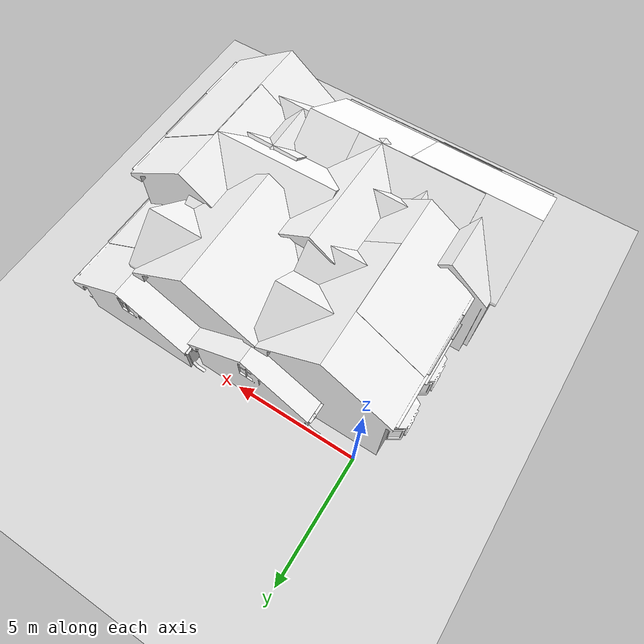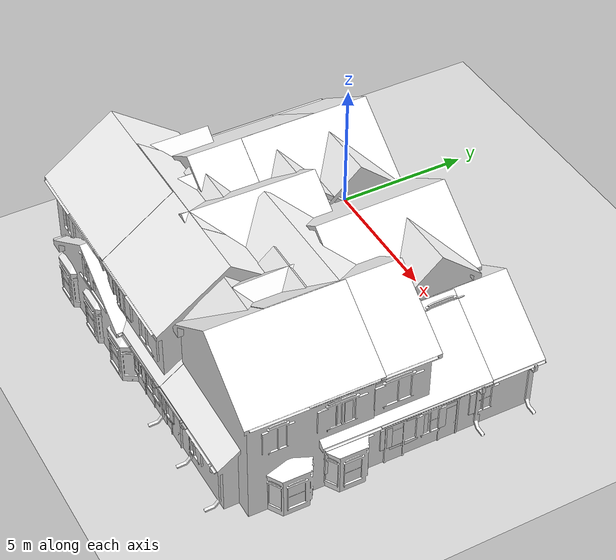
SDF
<sdf version="1.6">
 <world name="default">
  <model name="ground_plane">
   <static>1</static>
   <link name="link">
    <collision name="collision">
     <geometry><plane><normal>0 0 1</normal><size>100 100</size></plane></geometry>
     <surface><friction><ode><mu>100</mu><mu2>50</mu2></ode></friction></surface>
    </collision>
    <visual name="visual">
     <cast_shadows>0</cast_shadows>
     <geometry><plane><normal>0 0 1</normal><size>100 100</size></plane></geometry>
     <material>
      <script><uri>file://media/materials/scripts/gazebo.material</uri><name>Gazebo/Grey</name></script>
     </material>
    </visual>
   </link>
  </model>
  <model name="Ev1_clone_0_clone_clone_0_clone">
   <link name="link">
    <inertial>
     <mass>1</mass>
     <inertia><ixx>1</ixx><ixy>0</ixy><ixz>0</ixz><iyy>1</iyy><iyz>0</iyz><izz>1</izz></inertia>
    </inertial>
    <visual name="visual">
     <geometry><mesh><uri>model://house_3/meshes/house_3.dae</uri><scale>1 1 1</scale></mesh></geometry>
     <material>
      <script>
       <uri>model://house_3/materials/scripts</uri>
       <uri>model://house_3/materials/textures</uri>
       <name>House_3/Diffuse</name>
      </script>
      <ambient>1 1 1 1</ambient>
      <diffuse>1 1 1 1</diffuse>
      <specular>0 0 0 1</specular>
      <emissive>0 0 0 1</emissive>
      <shader type="vertex"><normal_map>__default__</normal_map></shader>
     </material>
    </visual>
    <collision name="collision">
     <geometry>
      <mesh><uri>/home/dgknrsln/.gazebo/models/house_3/meshes/house_3.dae</uri><scale>1 1 1</scale></mesh>
     </geometry>
     <surface>
      <friction>
       <ode><mu>1</mu><mu2>1</mu2><fdir1>0 0 0</fdir1><slip1>0</slip1><slip2>0</slip2></ode>
       <torsional>
        <coefficient>1</coefficient>
        <patch_radius>0</patch_radius>
        <surface_radius>0</surface_radius>
        <use_patch_radius>1</use_patch_radius>
        <ode><slip>0</slip></ode>
       </torsional>
      </friction>
      <bounce><restitution_coefficient>0</restitution_coefficient><threshold>1e+06</threshold></bounce>
      <contact>
       <collide_without_contact>0</collide_without_contact>
       <collide_without_contact_bitmask>1</collide_without_contact_bitmask>
       <collide_bitmask>1</collide_bitmask>
       <ode>
        <soft_cfm>0</soft_cfm>
        <soft_erp>0.2</soft_erp>
        <kp>1e+13</kp>
        <kd>1</kd>
        <max_vel>0.01</max_vel>
        <min_depth>0</min_depth>
       </ode>
       <bullet>
        <split_impulse>1</split_impulse>
        <split_impulse_penetration_threshold>-0.01</split_impulse_penetration_threshold>
        <soft_cfm>0</soft_cfm>
        <soft_erp>0.2</soft_erp>
        <kp>1e+13</kp>
        <kd>1</kd>
       </bullet>
      </contact>
     </surface>
    </collision>
   </link>
   <static>1</static>
   <pose>6.74391 -5.0643 0 0 0 -1.56767</pose>
  </model>
  <model name="Ev1_clone_0_clone_0">
   <link name="link">
    <inertial>
     <mass>1</mass>
     <inertia><ixx>1</ixx><ixy>0</ixy><ixz>0</ixz><iyy>1</iyy><iyz>0</iyz><izz>1</izz></inertia>
    </inertial>
    <visual name="visual">
     <geometry><mesh><uri>model://house_3/meshes/house_3.dae</uri><scale>1 1 1</scale></mesh></geometry>
     <material>
      <script>
       <uri>model://house_3/materials/scripts</uri>
       <uri>model://house_3/materials/textures</uri>
       <name>House_3/Diffuse</name>
      </script>
      <ambient>1 1 1 1</ambient>
      <diffuse>1 1 1 1</diffuse>
      <specular>0 0 0 1</specular>
      <emissive>0 0 0 1</emissive>
      <shader type="vertex"><normal_map>__default__</normal_map></shader>
     </material>
    </visual>
    <collision name="collision">
     <geometry>
      <mesh><uri>/home/dgknrsln/.gazebo/models/house_3/meshes/house_3.dae</uri><scale>1 1 1</scale></mesh>
     </geometry>
     <surface>
      <friction>
       <ode><mu>1</mu><mu2>1</mu2><fdir1>0 0 0</fdir1><slip1>0</slip1><slip2>0</slip2></ode>
       <torsional>
        <coefficient>1</coefficient>
        <patch_radius>0</patch_radius>
        <surface_radius>0</surface_radius>
        <use_patch_radius>1</use_patch_radius>
        <ode><slip>0</slip></ode>
       </torsional>
      </friction>
      <bounce><restitution_coefficient>0</restitution_coefficient><threshold>1e+06</threshold></bounce>
      <contact>
       <collide_without_contact>0</collide_without_contact>
       <collide_without_contact_bitmask>1</collide_without_contact_bitmask>
       <collide_bitmask>1</collide_bitmask>
       <ode>
        <soft_cfm>0</soft_cfm>
        <soft_erp>0.2</soft_erp>
        <kp>1e+13</kp>
        <kd>1</kd>
        <max_vel>0.01</max_vel>
        <min_depth>0</min_depth>
       </ode>
       <bullet>
        <split_impulse>1</split_impulse>
        <split_impulse_penetration_threshold>-0.01</split_impulse_penetration_threshold>
        <soft_cfm>0</soft_cfm>
        <soft_erp>0.2</soft_erp>
        <kp>1e+13</kp>
        <kd>1</kd>
       </bullet>
      </contact>
     </surface>
    </collision>
   </link>
   <static>1</static>
   <pose>4.29526 -3.82004 0 0 -0 1.55613</pose>
  </model>
  <model name="Ev1_clone_clone_clone_1">
   <link name="link">
    <inertial>
     <mass>1</mass>
     <inertia><ixx>1</ixx><ixy>0</ixy><ixz>0</ixz><iyy>1</iyy><iyz>0</iyz><izz>1</izz></inertia>
    </inertial>
    <visual name="visual">
     <geometry><mesh><uri>model://house_3/meshes/house_3.dae</uri><scale>1 1 1</scale></mesh></geometry>
     <material>
      <script>
       <uri>model://house_3/materials/scripts</uri>
       <uri>model://house_3/materials/textures</uri>
       <name>House_3/Diffuse</name>
      </script>
      <ambient>1 1 1 1</ambient>
      <diffuse>1 1 1 1</diffuse>
      <specular>0 0 0 1</specular>
      <emissive>0 0 0 1</emissive>
      <shader type="vertex"><normal_map>__default__</normal_map></shader>
     </material>
    </visual>
    <collision name="collision">
     <geometry>
      <mesh><uri>/home/dgknrsln/.gazebo/models/house_3/meshes/house_3.dae</uri><scale>1 1 1</scale></mesh>
     </geometry>
     <surface>
      <friction>
       <ode><mu>1</mu><mu2>1</mu2><fdir1>0 0 0</fdir1><slip1>0</slip1><slip2>0</slip2></ode>
       <torsional>
        <coefficient>1</coefficient>
        <patch_radius>0</patch_radius>
        <surface_radius>0</surface_radius>
        <use_patch_radius>1</use_patch_radius>
        <ode><slip>0</slip></ode>
       </torsional>
      </friction>
      <bounce><restitution_coefficient>0</restitution_coefficient><threshold>1e+06</threshold></bounce>
      <contact>
       <collide_without_contact>0</collide_without_contact>
       <collide_without_contact_bitmask>1</collide_without_contact_bitmask>
       <collide_bitmask>1</collide_bitmask>
       <ode>
        <soft_cfm>0</soft_cfm>
        <soft_erp>0.2</soft_erp>
        <kp>1e+13</kp>
        <kd>1</kd>
        <max_vel>0.01</max_vel>
        <min_depth>0</min_depth>
       </ode>
       <bullet>
        <split_impulse>1</split_impulse>
        <split_impulse_penetration_threshold>-0.01</split_impulse_penetration_threshold>
        <soft_cfm>0</soft_cfm>
        <soft_erp>0.2</soft_erp>
        <kp>1e+13</kp>
        <kd>1</kd>
       </bullet>
      </contact>
     </surface>
    </collision>
   </link>
   <static>1</static>
   <pose>4.55651 -5.72523 0 0 0 -3.13049</pose>
  </model>
  <model name="Ev1_clone_0_clone_clone_0_clone_clone_0">
   <link name="link">
    <inertial>
     <mass>1</mass>
     <inertia><ixx>1</ixx><ixy>0</ixy><ixz>0</ixz><iyy>1</iyy><iyz>0</iyz><izz>1</izz></inertia>
    </inertial>
    <visual name="visual">
     <geometry><mesh><uri>model://house_3/meshes/house_3.dae</uri><scale>1 1 1</scale></mesh></geometry>
     <material>
      <script>
       <uri>model://house_3/materials/scripts</uri>
       <uri>model://house_3/materials/textures</uri>
       <name>House_3/Diffuse</name>
      </script>
      <ambient>1 1 1 1</ambient>
      <diffuse>1 1 1 1</diffuse>
      <specular>0 0 0 1</specular>
      <emissive>0 0 0 1</emissive>
      <shader type="vertex"><normal_map>__default__</normal_map></shader>
     </material>
    </visual>
    <collision name="collision">
     <geometry>
      <mesh><uri>/home/dgknrsln/.gazebo/models/house_3/meshes/house_3.dae</uri><scale>1 1 1</scale></mesh>
     </geometry>
     <surface>
      <friction>
       <ode><mu>1</mu><mu2>1</mu2><fdir1>0 0 0</fdir1><slip1>0</slip1><slip2>0</slip2></ode>
       <torsional>
        <coefficient>1</coefficient>
        <patch_radius>0</patch_radius>
        <surface_radius>0</surface_radius>
        <use_patch_radius>1</use_patch_radius>
        <ode><slip>0</slip></ode>
       </torsional>
      </friction>
      <bounce><restitution_coefficient>0</restitution_coefficient><threshold>1e+06</threshold></bounce>
      <contact>
       <collide_without_contact>0</collide_without_contact>
       <collide_without_contact_bitmask>1</collide_without_contact_bitmask>
       <collide_bitmask>1</collide_bitmask>
       <ode>
        <soft_cfm>0</soft_cfm>
        <soft_erp>0.2</soft_erp>
        <kp>1e+13</kp>
        <kd>1</kd>
        <max_vel>0.01</max_vel>
        <min_depth>0</min_depth>
       </ode>
       <bullet>
        <split_impulse>1</split_impulse>
        <split_impulse_penetration_threshold>-0.01</split_impulse_penetration_threshold>
        <soft_cfm>0</soft_cfm>
        <soft_erp>0.2</soft_erp>
        <kp>1e+13</kp>
        <kd>1</kd>
       </bullet>
      </contact>
     </surface>
    </collision>
   </link>
   <static>1</static>
   <pose>1.74159 -5.0706 0 0 0 -1.56767</pose>
  </model>
  <model name="Ev1_clone_0_clone_clone_0_clone_clone_1">
   <link name="link">
    <inertial>
     <mass>1</mass>
     <inertia><ixx>1</ixx><ixy>0</ixy><ixz>0</ixz><iyy>1</iyy><iyz>0</iyz><izz>1</izz></inertia>
    </inertial>
    <visual name="visual">
     <geometry><mesh><uri>model://house_3/meshes/house_3.dae</uri><scale>1 1 1</scale></mesh></geometry>
     <material>
      <script>
       <uri>model://house_3/materials/scripts</uri>
       <uri>model://house_3/materials/textures</uri>
       <name>House_3/Diffuse</name>
      </script>
      <ambient>1 1 1 1</ambient>
      <diffuse>1 1 1 1</diffuse>
      <specular>0 0 0 1</specular>
      <emissive>0 0 0 1</emissive>
      <shader type="vertex"><normal_map>__default__</normal_map></shader>
     </material>
    </visual>
    <collision name="collision">
     <geometry>
      <mesh><uri>/home/dgknrsln/.gazebo/models/house_3/meshes/house_3.dae</uri><scale>1 1 1</scale></mesh>
     </geometry>
     <surface>
      <friction>
       <ode><mu>1</mu><mu2>1</mu2><fdir1>0 0 0</fdir1><slip1>0</slip1><slip2>0</slip2></ode>
       <torsional>
        <coefficient>1</coefficient>
        <patch_radius>0</patch_radius>
        <surface_radius>0</surface_radius>
        <use_patch_radius>1</use_patch_radius>
        <ode><slip>0</slip></ode>
       </torsional>
      </friction>
      <bounce><restitution_coefficient>0</restitution_coefficient><threshold>1e+06</threshold></bounce>
      <contact>
       <collide_without_contact>0</collide_without_contact>
       <collide_without_contact_bitmask>1</collide_without_contact_bitmask>
       <collide_bitmask>1</collide_bitmask>
       <ode>
        <soft_cfm>0</soft_cfm>
        <soft_erp>0.2</soft_erp>
        <kp>1e+13</kp>
        <kd>1</kd>
        <max_vel>0.01</max_vel>
        <min_depth>0</min_depth>
       </ode>
       <bullet>
        <split_impulse>1</split_impulse>
        <split_impulse_penetration_threshold>-0.01</split_impulse_penetration_threshold>
        <soft_cfm>0</soft_cfm>
        <soft_erp>0.2</soft_erp>
        <kp>1e+13</kp>
        <kd>1</kd>
       </bullet>
      </contact>
     </surface>
    </collision>
   </link>
   <static>1</static>
   <pose>1.73842 -7.06973 0 0 0 -1.56767</pose>
  </model>
  <model name="Ev1_clone_1_clone">
   <link name="link">
    <inertial>
     <mass>1</mass>
     <inertia><ixx>1</ixx><ixy>0</ixy><ixz>0</ixz><iyy>1</iyy><iyz>0</iyz><izz>1</izz></inertia>
    </inertial>
    <visual name="visual">
     <geometry><mesh><uri>model://house_3/meshes/house_3.dae</uri><scale>1 1 1</scale></mesh></geometry>
     <material>
      <script>
       <uri>model://house_3/materials/scripts</uri>
       <uri>model://house_3/materials/textures</uri>
       <name>House_3/Diffuse</name>
      </script>
      <ambient>1 1 1 1</ambient>
      <diffuse>1 1 1 1</diffuse>
      <specular>0 0 0 1</specular>
      <emissive>0 0 0 1</emissive>
      <shader type="vertex"><normal_map>__default__</normal_map></shader>
     </material>
    </visual>
    <collision name="collision">
     <geometry>
      <mesh><uri>/home/dgknrsln/.gazebo/models/house_3/meshes/house_3.dae</uri><scale>1 1 1</scale></mesh>
     </geometry>
     <surface>
      <friction>
       <ode><mu>1</mu><mu2>1</mu2><fdir1>0 0 0</fdir1><slip1>0</slip1><slip2>0</slip2></ode>
       <torsional>
        <coefficient>1</coefficient>
        <patch_radius>0</patch_radius>
        <surface_radius>0</surface_radius>
        <use_patch_radius>1</use_patch_radius>
        <ode><slip>0</slip></ode>
       </torsional>
      </friction>
      <bounce><restitution_coefficient>0</restitution_coefficient><threshold>1e+06</threshold></bounce>
      <contact>
       <collide_without_contact>0</collide_without_contact>
       <collide_without_contact_bitmask>1</collide_without_contact_bitmask>
       <collide_bitmask>1</collide_bitmask>
       <ode>
        <soft_cfm>0</soft_cfm>
        <soft_erp>0.2</soft_erp>
        <kp>1e+13</kp>
        <kd>1</kd>
        <max_vel>0.01</max_vel>
        <min_depth>0</min_depth>
       </ode>
       <bullet>
        <split_impulse>1</split_impulse>
        <split_impulse_penetration_threshold>-0.01</split_impulse_penetration_threshold>
        <soft_cfm>0</soft_cfm>
        <soft_erp>0.2</soft_erp>
        <kp>1e+13</kp>
        <kd>1</kd>
       </bullet>
      </contact>
     </surface>
    </collision>
   </link>
   <static>1</static>
   <pose>3.06075 -8.2986 0 0 -0 0</pose>
  </model>
  <model name="Ev1_clone_1_clone_0">
   <link name="link">
    <inertial>
     <mass>1</mass>
     <inertia><ixx>1</ixx><ixy>0</ixy><ixz>0</ixz><iyy>1</iyy><iyz>0</iyz><izz>1</izz></inertia>
    </inertial>
    <visual name="visual">
     <geometry><mesh><uri>model://house_3/meshes/house_3.dae</uri><scale>1 1 1</scale></mesh></geometry>
     <material>
      <script>
       <uri>model://house_3/materials/scripts</uri>
       <uri>model://house_3/materials/textures</uri>
       <name>House_3/Diffuse</name>
      </script>
      <ambient>1 1 1 1</ambient>
      <diffuse>1 1 1 1</diffuse>
      <specular>0 0 0 1</specular>
      <emissive>0 0 0 1</emissive>
      <shader type="vertex"><normal_map>__default__</normal_map></shader>
     </material>
    </visual>
    <collision name="collision">
     <geometry>
      <mesh><uri>/home/dgknrsln/.gazebo/models/house_3/meshes/house_3.dae</uri><scale>1 1 1</scale></mesh>
     </geometry>
     <surface>
      <friction>
       <ode><mu>1</mu><mu2>1</mu2><fdir1>0 0 0</fdir1><slip1>0</slip1><slip2>0</slip2></ode>
       <torsional>
        <coefficient>1</coefficient>
        <patch_radius>0</patch_radius>
        <surface_radius>0</surface_radius>
        <use_patch_radius>1</use_patch_radius>
        <ode><slip>0</slip></ode>
       </torsional>
      </friction>
      <bounce><restitution_coefficient>0</restitution_coefficient><threshold>1e+06</threshold></bounce>
      <contact>
       <collide_without_contact>0</collide_without_contact>
       <collide_without_contact_bitmask>1</collide_without_contact_bitmask>
       <collide_bitmask>1</collide_bitmask>
       <ode>
        <soft_cfm>0</soft_cfm>
        <soft_erp>0.2</soft_erp>
        <kp>1e+13</kp>
        <kd>1</kd>
        <max_vel>0.01</max_vel>
        <min_depth>0</min_depth>
       </ode>
       <bullet>
        <split_impulse>1</split_impulse>
        <split_impulse_penetration_threshold>-0.01</split_impulse_penetration_threshold>
        <soft_cfm>0</soft_cfm>
        <soft_erp>0.2</soft_erp>
        <kp>1e+13</kp>
        <kd>1</kd>
       </bullet>
      </contact>
     </surface>
    </collision>
   </link>
   <static>1</static>
   <pose>5.06956 -8.26492 0 0 -0 0</pose>
  </model>
  <model name="Ev1_clone_1_clone_1">
   <link name="link">
    <inertial>
     <mass>1</mass>
     <inertia><ixx>1</ixx><ixy>0</ixy><ixz>0</ixz><iyy>1</iyy><iyz>0</iyz><izz>1</izz></inertia>
    </inertial>
    <visual name="visual">
     <geometry><mesh><uri>model://house_3/meshes/house_3.dae</uri><scale>1 1 1</scale></mesh></geometry>
     <material>
      <script>
       <uri>model://house_3/materials/scripts</uri>
       <uri>model://house_3/materials/textures</uri>
       <name>House_3/Diffuse</name>
      </script>
      <ambient>1 1 1 1</ambient>
      <diffuse>1 1 1 1</diffuse>
      <specular>0 0 0 1</specular>
      <emissive>0 0 0 1</emissive>
      <shader type="vertex"><normal_map>__default__</normal_map></shader>
     </material>
    </visual>
    <collision name="collision">
     <geometry>
      <mesh><uri>/home/dgknrsln/.gazebo/models/house_3/meshes/house_3.dae</uri><scale>1 1 1</scale></mesh>
     </geometry>
     <surface>
      <friction>
       <ode><mu>1</mu><mu2>1</mu2><fdir1>0 0 0</fdir1><slip1>0</slip1><slip2>0</slip2></ode>
       <torsional>
        <coefficient>1</coefficient>
        <patch_radius>0</patch_radius>
        <surface_radius>0</surface_radius>
        <use_patch_radius>1</use_patch_radius>
        <ode><slip>0</slip></ode>
       </torsional>
      </friction>
      <bounce><restitution_coefficient>0</restitution_coefficient><threshold>1e+06</threshold></bounce>
      <contact>
       <collide_without_contact>0</collide_without_contact>
       <collide_without_contact_bitmask>1</collide_without_contact_bitmask>
       <collide_bitmask>1</collide_bitmask>
       <ode>
        <soft_cfm>0</soft_cfm>
        <soft_erp>0.2</soft_erp>
        <kp>1e+13</kp>
        <kd>1</kd>
        <max_vel>0.01</max_vel>
        <min_depth>0</min_depth>
       </ode>
       <bullet>
        <split_impulse>1</split_impulse>
        <split_impulse_penetration_threshold>-0.01</split_impulse_penetration_threshold>
        <soft_cfm>0</soft_cfm>
        <soft_erp>0.2</soft_erp>
        <kp>1e+13</kp>
        <kd>1</kd>
       </bullet>
      </contact>
     </surface>
    </collision>
   </link>
   <static>1</static>
   <pose>7.06664 -8.2744 0 0 -0 0</pose>
  </model>
  <model name="Ev1_clone_0_clone_clone_clone">
   <link name="link">
    <inertial>
     <mass>1</mass>
     <inertia><ixx>1</ixx><ixy>0</ixy><ixz>0</ixz><iyy>1</iyy><iyz>0</iyz><izz>1</izz></inertia>
    </inertial>
    <visual name="visual">
     <geometry><mesh><uri>model://house_3/meshes/house_3.dae</uri><scale>1 1 1</scale></mesh></geometry>
     <material>
      <script>
       <uri>model://house_3/materials/scripts</uri>
       <uri>model://house_3/materials/textures</uri>
       <name>House_3/Diffuse</name>
      </script>
      <ambient>1 1 1 1</ambient>
      <diffuse>1 1 1 1</diffuse>
      <specular>0 0 0 1</specular>
      <emissive>0 0 0 1</emissive>
      <shader type="vertex"><normal_map>__default__</normal_map></shader>
     </material>
    </visual>
    <collision name="collision">
     <geometry>
      <mesh><uri>/home/dgknrsln/.gazebo/models/house_3/meshes/house_3.dae</uri><scale>1 1 1</scale></mesh>
     </geometry>
     <surface>
      <friction>
       <ode><mu>1</mu><mu2>1</mu2><fdir1>0 0 0</fdir1><slip1>0</slip1><slip2>0</slip2></ode>
       <torsional>
        <coefficient>1</coefficient>
        <patch_radius>0</patch_radius>
        <surface_radius>0</surface_radius>
        <use_patch_radius>1</use_patch_radius>
        <ode><slip>0</slip></ode>
       </torsional>
      </friction>
      <bounce><restitution_coefficient>0</restitution_coefficient><threshold>1e+06</threshold></bounce>
      <contact>
       <collide_without_contact>0</collide_without_contact>
       <collide_without_contact_bitmask>1</collide_without_contact_bitmask>
       <collide_bitmask>1</collide_bitmask>
       <ode>
        <soft_cfm>0</soft_cfm>
        <soft_erp>0.2</soft_erp>
        <kp>1e+13</kp>
        <kd>1</kd>
        <max_vel>0.01</max_vel>
        <min_depth>0</min_depth>
       </ode>
       <bullet>
        <split_impulse>1</split_impulse>
        <split_impulse_penetration_threshold>-0.01</split_impulse_penetration_threshold>
        <soft_cfm>0</soft_cfm>
        <soft_erp>0.2</soft_erp>
        <kp>1e+13</kp>
        <kd>1</kd>
       </bullet>
      </contact>
     </surface>
    </collision>
   </link>
   <static>1</static>
   <pose>9.27389 -3.55043 0 0 -0 1.55613</pose>
  </model>
  <model name="Ev1_clone_0_clone_clone_clone_0">
   <link name="link">
    <inertial>
     <mass>1</mass>
     <inertia><ixx>1</ixx><ixy>0</ixy><ixz>0</ixz><iyy>1</iyy><iyz>0</iyz><izz>1</izz></inertia>
    </inertial>
    <visual name="visual">
     <geometry><mesh><uri>model://house_3/meshes/house_3.dae</uri><scale>1 1 1</scale></mesh></geometry>
     <material>
      <script>
       <uri>model://house_3/materials/scripts</uri>
       <uri>model://house_3/materials/textures</uri>
       <name>House_3/Diffuse</name>
      </script>
      <ambient>1 1 1 1</ambient>
      <diffuse>1 1 1 1</diffuse>
      <specular>0 0 0 1</specular>
      <emissive>0 0 0 1</emissive>
      <shader type="vertex"><normal_map>__default__</normal_map></shader>
     </material>
    </visual>
    <collision name="collision">
     <geometry>
      <mesh><uri>/home/dgknrsln/.gazebo/models/house_3/meshes/house_3.dae</uri><scale>1 1 1</scale></mesh>
     </geometry>
     <surface>
      <friction>
       <ode><mu>1</mu><mu2>1</mu2><fdir1>0 0 0</fdir1><slip1>0</slip1><slip2>0</slip2></ode>
       <torsional>
        <coefficient>1</coefficient>
        <patch_radius>0</patch_radius>
        <surface_radius>0</surface_radius>
        <use_patch_radius>1</use_patch_radius>
        <ode><slip>0</slip></ode>
       </torsional>
      </friction>
      <bounce><restitution_coefficient>0</restitution_coefficient><threshold>1e+06</threshold></bounce>
      <contact>
       <collide_without_contact>0</collide_without_contact>
       <collide_without_contact_bitmask>1</collide_without_contact_bitmask>
       <collide_bitmask>1</collide_bitmask>
       <ode>
        <soft_cfm>0</soft_cfm>
        <soft_erp>0.2</soft_erp>
        <kp>1e+13</kp>
        <kd>1</kd>
        <max_vel>0.01</max_vel>
        <min_depth>0</min_depth>
       </ode>
       <bullet>
        <split_impulse>1</split_impulse>
        <split_impulse_penetration_threshold>-0.01</split_impulse_penetration_threshold>
        <soft_cfm>0</soft_cfm>
        <soft_erp>0.2</soft_erp>
        <kp>1e+13</kp>
        <kd>1</kd>
       </bullet>
      </contact>
     </surface>
    </collision>
   </link>
   <static>1</static>
   <pose>9.27696 -5.54216 0 0 -0 1.55613</pose>
  </model>
 </world>
</sdf>
